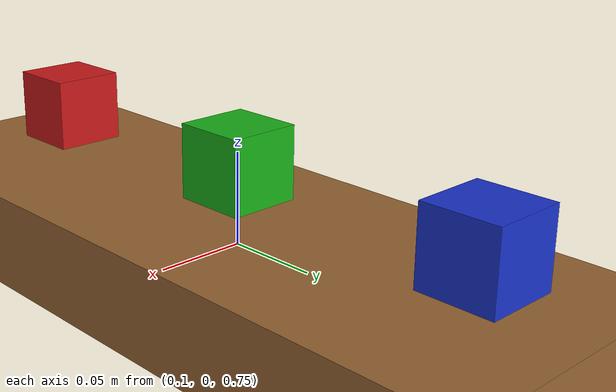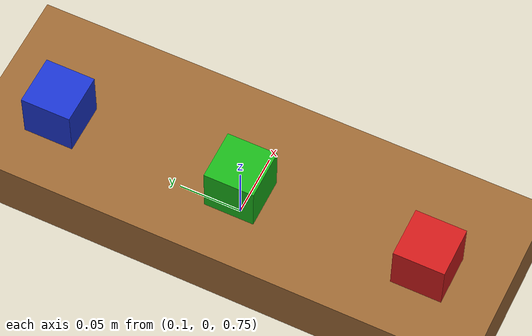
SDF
<sdf version="1.7">
 <world name="pick_place_world">
  <include><uri>model://sun</uri></include>
  <include><uri>model://ground_plane</uri></include>
  <model name="table">
   <static>true</static>
   <pose>0 0 0.75 0 0 0</pose>
   <link name="top">
    <collision name="top_collision"><geometry><box><size>0.8 0.6 0.05</size></box></geometry></collision>
    <visual name="top_visual">
     <geometry><box><size>0.8 0.6 0.05</size></box></geometry>
     <material><ambient>0.6 0.4 0.2 1</ambient><diffuse>0.6 0.4 0.2 1</diffuse></material>
    </visual>
   </link>
  </model>
  <model name="cube_red">
   <pose>0.10 -0.15 0.795 0 0 0</pose>
   <link name="link">
    <inertial>
     <mass>0.05</mass>
     <inertia><ixx>1.3e-5</ixx><iyy>1.3e-5</iyy><izz>1.3e-5</izz><ixy>0</ixy><ixz>0</ixz><iyz>0</iyz></inertia>
    </inertial>
    <collision name="collision"><geometry><box><size>0.04 0.04 0.04</size></box></geometry></collision>
    <visual name="visual">
     <geometry><box><size>0.04 0.04 0.04</size></box></geometry>
     <material><ambient>0.8 0.1 0.1 1</ambient><diffuse>0.8 0.1 0.1 1</diffuse></material>
    </visual>
   </link>
  </model>
  <model name="cube_green">
   <pose>0.10 0.00 0.795 0 0 0</pose>
   <link name="link">
    <inertial>
     <mass>0.05</mass>
     <inertia><ixx>1.3e-5</ixx><iyy>1.3e-5</iyy><izz>1.3e-5</izz><ixy>0</ixy><ixz>0</ixz><iyz>0</iyz></inertia>
    </inertial>
    <collision name="collision"><geometry><box><size>0.04 0.04 0.04</size></box></geometry></collision>
    <visual name="visual">
     <geometry><box><size>0.04 0.04 0.04</size></box></geometry>
     <material><ambient>0.1 0.7 0.1 1</ambient><diffuse>0.1 0.7 0.1 1</diffuse></material>
    </visual>
   </link>
  </model>
  <model name="cube_blue">
   <pose>0.10 0.15 0.795 0 0 0</pose>
   <link name="link">
    <inertial>
     <mass>0.05</mass>
     <inertia><ixx>1.3e-5</ixx><iyy>1.3e-5</iyy><izz>1.3e-5</izz><ixy>0</ixy><ixz>0</ixz><iyz>0</iyz></inertia>
    </inertial>
    <collision name="collision"><geometry><box><size>0.04 0.04 0.04</size></box></geometry></collision>
    <visual name="visual">
     <geometry><box><size>0.04 0.04 0.04</size></box></geometry>
     <material><ambient>0.1 0.2 0.8 1</ambient><diffuse>0.1 0.2 0.8 1</diffuse></material>
    </visual>
   </link>
  </model>
 </world>
</sdf>
